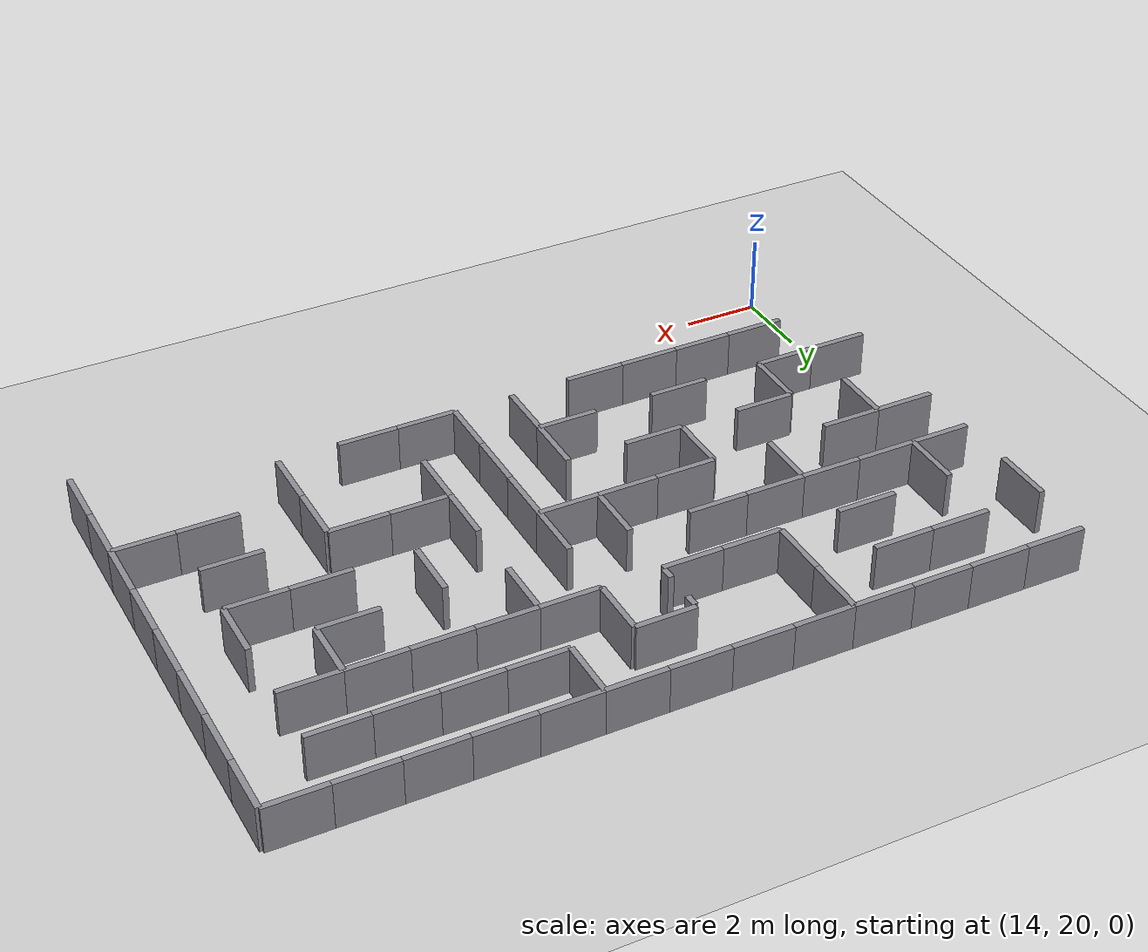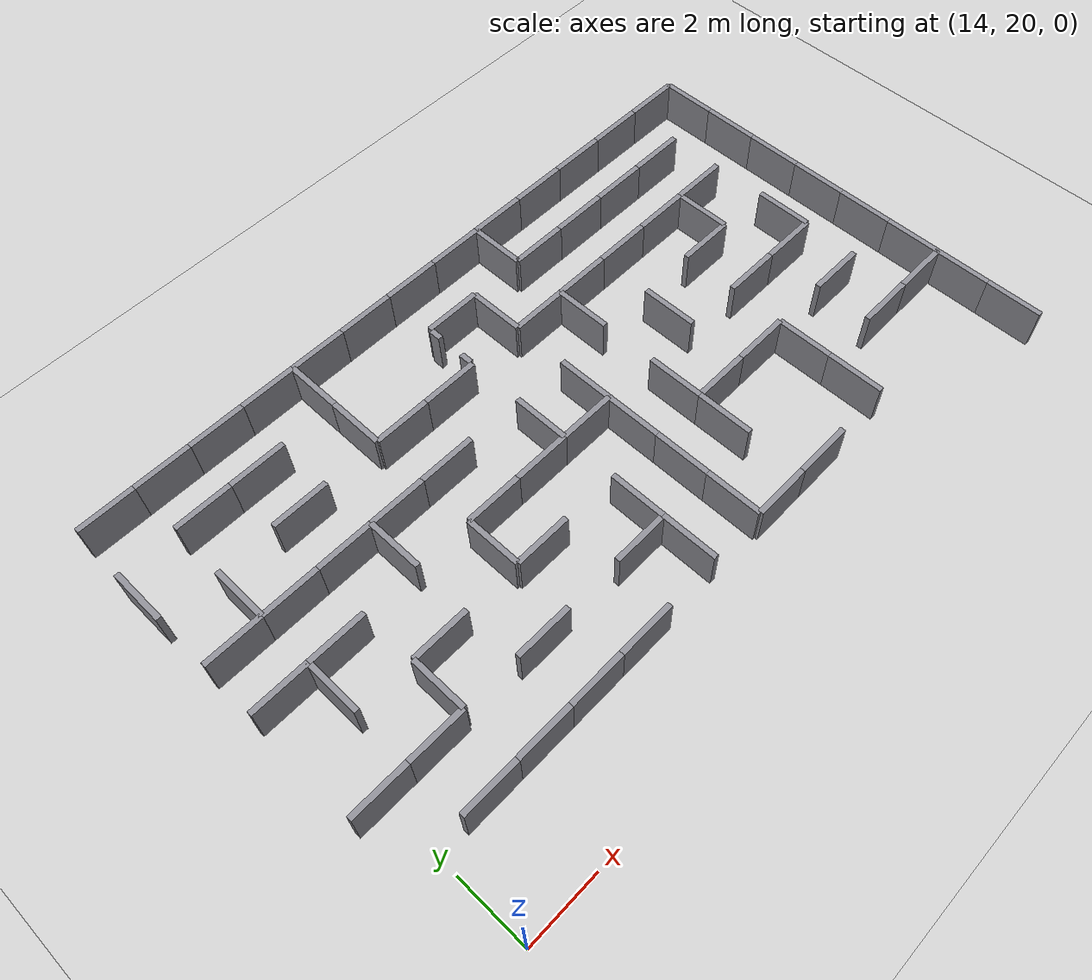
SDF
<sdf version="1.10">
 <world name="sar_maze_generated">
  <model name="ground_plane">
   <static>true</static>
   <link name="link">
    <collision name="collision">
     <geometry><plane><normal>0 0 1</normal><size>51.1 51.1</size></plane></geometry>
    </collision>
    <visual name="visual">
     <geometry><plane><normal>0 0 1</normal><size>51.1 51.1</size></plane></geometry>
     <material><ambient>0.8 0.8 0.8 1</ambient><diffuse>0.8 0.8 0.8 1</diffuse></material>
    </visual>
    <pose>16.27 16.27 0 0 0 0</pose>
    <inertial>
     <mass>1</mass>
     <inertia><ixx>1</ixx><ixy>0</ixy><ixz>0</ixz><iyy>1</iyy><iyz>0</iyz><izz>1</izz></inertia>
    </inertial>
   </link>
  </model>
  <model name="maze_structure">
   <static>true</static>
   <link name="wall_h_316">
    <static>true</static>
    <pose>15.5000 22.4750 0.6000 0 0 0</pose>
    <collision name="wall_h_316_collision">
     <geometry><box><size>1.5500 0.1500 1.2000</size></box></geometry>
    </collision>
    <visual name="wall_h_316_visual">
     <geometry><box><size>1.5500 0.1500 1.2000</size></box></geometry>
     <material><ambient>0.55 0.55 0.58 1</ambient><diffuse>0.55 0.55 0.58 1</diffuse></material>
    </visual>
   </link>
   <link name="wall_h_317">
    <static>true</static>
    <pose>17.0500 22.4750 0.6000 0 0 0</pose>
    <collision name="wall_h_317_collision">
     <geometry><box><size>1.5500 0.1500 1.2000</size></box></geometry>
    </collision>
    <visual name="wall_h_317_visual">
     <geometry><box><size>1.5500 0.1500 1.2000</size></box></geometry>
     <material><ambient>0.55 0.55 0.58 1</ambient><diffuse>0.55 0.55 0.58 1</diffuse></material>
    </visual>
   </link>
   <link name="wall_h_319">
    <static>true</static>
    <pose>18.6000 22.4750 0.6000 0 0 0</pose>
    <collision name="wall_h_319_collision">
     <geometry><box><size>1.5500 0.1500 1.2000</size></box></geometry>
    </collision>
    <visual name="wall_h_319_visual">
     <geometry><box><size>1.5500 0.1500 1.2000</size></box></geometry>
     <material><ambient>0.55 0.55 0.58 1</ambient><diffuse>0.55 0.55 0.58 1</diffuse></material>
    </visual>
   </link>
   <link name="wall_h_320">
    <static>true</static>
    <pose>20.1500 22.4750 0.6000 0 0 0</pose>
    <collision name="wall_h_320_collision">
     <geometry><box><size>1.5500 0.1500 1.2000</size></box></geometry>
    </collision>
    <visual name="wall_h_320_visual">
     <geometry><box><size>1.5500 0.1500 1.2000</size></box></geometry>
     <material><ambient>0.55 0.55 0.58 1</ambient><diffuse>0.55 0.55 0.58 1</diffuse></material>
    </visual>
   </link>
   <link name="wall_h_321">
    <static>true</static>
    <pose>24.8000 22.4750 0.6000 0 0 0</pose>
    <collision name="wall_h_321_collision">
     <geometry><box><size>1.5500 0.1500 1.2000</size></box></geometry>
    </collision>
    <visual name="wall_h_321_visual">
     <geometry><box><size>1.5500 0.1500 1.2000</size></box></geometry>
     <material><ambient>0.55 0.55 0.58 1</ambient><diffuse>0.55 0.55 0.58 1</diffuse></material>
    </visual>
   </link>
   <link name="wall_h_323">
    <static>true</static>
    <pose>26.3500 22.4750 0.6000 0 0 0</pose>
    <collision name="wall_h_323_collision">
     <geometry><box><size>1.5500 0.1500 1.2000</size></box></geometry>
    </collision>
    <visual name="wall_h_323_visual">
     <geometry><box><size>1.5500 0.1500 1.2000</size></box></geometry>
     <material><ambient>0.55 0.55 0.58 1</ambient><diffuse>0.55 0.55 0.58 1</diffuse></material>
    </visual>
   </link>
   <link name="wall_boundary_v_326">
    <static>true</static>
    <pose>33.3250 21.7000 0.6000 0 0 0</pose>
    <collision name="wall_boundary_v_326_collision">
     <geometry><box><size>0.1500 1.5500 1.2000</size></box></geometry>
    </collision>
    <visual name="wall_boundary_v_326_visual">
     <geometry><box><size>0.1500 1.5500 1.2000</size></box></geometry>
     <material><ambient>0.55 0.55 0.58 1</ambient><diffuse>0.55 0.55 0.58 1</diffuse></material>
    </visual>
   </link>
   <link name="wall_h_333">
    <static>true</static>
    <pose>13.9500 24.0250 0.6000 0 0 0</pose>
    <collision name="wall_h_333_collision">
     <geometry><box><size>1.5500 0.1500 1.2000</size></box></geometry>
    </collision>
    <visual name="wall_h_333_visual">
     <geometry><box><size>1.5500 0.1500 1.2000</size></box></geometry>
     <material><ambient>0.55 0.55 0.58 1</ambient><diffuse>0.55 0.55 0.58 1</diffuse></material>
    </visual>
   </link>
   <link name="wall_h_334">
    <static>true</static>
    <pose>15.5000 24.0250 0.6000 0 0 0</pose>
    <collision name="wall_h_334_collision">
     <geometry><box><size>1.5500 0.1500 1.2000</size></box></geometry>
    </collision>
    <visual name="wall_h_334_visual">
     <geometry><box><size>1.5500 0.1500 1.2000</size></box></geometry>
     <material><ambient>0.55 0.55 0.58 1</ambient><diffuse>0.55 0.55 0.58 1</diffuse></material>
    </visual>
   </link>
   <link name="wall_h_335">
    <static>true</static>
    <pose>18.6000 24.0250 0.6000 0 0 0</pose>
    <collision name="wall_h_335_collision">
     <geometry><box><size>1.5500 0.1500 1.2000</size></box></geometry>
    </collision>
    <visual name="wall_h_335_visual">
     <geometry><box><size>1.5500 0.1500 1.2000</size></box></geometry>
     <material><ambient>0.55 0.55 0.58 1</ambient><diffuse>0.55 0.55 0.58 1</diffuse></material>
    </visual>
   </link>
   <link name="wall_h_336">
    <static>true</static>
    <pose>21.7000 24.0250 0.6000 0 0 0</pose>
    <collision name="wall_h_336_collision">
     <geometry><box><size>1.5500 0.1500 1.2000</size></box></geometry>
    </collision>
    <visual name="wall_h_336_visual">
     <geometry><box><size>1.5500 0.1500 1.2000</size></box></geometry>
     <material><ambient>0.55 0.55 0.58 1</ambient><diffuse>0.55 0.55 0.58 1</diffuse></material>
    </visual>
   </link>
   <link name="wall_v_337">
    <static>true</static>
    <pose>22.4750 23.2500 0.6000 0 0 0</pose>
    <collision name="wall_v_337_collision">
     <geometry><box><size>0.1500 1.5500 1.2000</size></box></geometry>
    </collision>
    <visual name="wall_v_337_visual">
     <geometry><box><size>0.1500 1.5500 1.2000</size></box></geometry>
     <material><ambient>0.55 0.55 0.58 1</ambient><diffuse>0.55 0.55 0.58 1</diffuse></material>
    </visual>
   </link>
   <link name="wall_v_338">
    <static>true</static>
    <pose>24.0250 23.2500 0.6000 0 0 0</pose>
    <collision name="wall_v_338_collision">
     <geometry><box><size>0.1500 1.5500 1.2000</size></box></geometry>
    </collision>
    <visual name="wall_v_338_visual">
     <geometry><box><size>0.1500 1.5500 1.2000</size></box></geometry>
     <material><ambient>0.55 0.55 0.58 1</ambient><diffuse>0.55 0.55 0.58 1</diffuse></material>
    </visual>
   </link>
   <link name="wall_v_339">
    <static>true</static>
    <pose>28.6750 23.2500 0.6000 0 0 0</pose>
    <collision name="wall_v_339_collision">
     <geometry><box><size>0.1500 1.5500 1.2000</size></box></geometry>
    </collision>
    <visual name="wall_v_339_visual">
     <geometry><box><size>0.1500 1.5500 1.2000</size></box></geometry>
     <material><ambient>0.55 0.55 0.58 1</ambient><diffuse>0.55 0.55 0.58 1</diffuse></material>
    </visual>
   </link>
   <link name="wall_h_340">
    <static>true</static>
    <pose>31.0000 24.0250 0.6000 0 0 0</pose>
    <collision name="wall_h_340_collision">
     <geometry><box><size>1.5500 0.1500 1.2000</size></box></geometry>
    </collision>
    <visual name="wall_h_340_visual">
     <geometry><box><size>1.5500 0.1500 1.2000</size></box></geometry>
     <material><ambient>0.55 0.55 0.58 1</ambient><diffuse>0.55 0.55 0.58 1</diffuse></material>
    </visual>
   </link>
   <link name="wall_h_341">
    <static>true</static>
    <pose>32.5500 24.0250 0.6000 0 0 0</pose>
    <collision name="wall_h_341_collision">
     <geometry><box><size>1.5500 0.1500 1.2000</size></box></geometry>
    </collision>
    <visual name="wall_h_341_visual">
     <geometry><box><size>1.5500 0.1500 1.2000</size></box></geometry>
     <material><ambient>0.55 0.55 0.58 1</ambient><diffuse>0.55 0.55 0.58 1</diffuse></material>
    </visual>
   </link>
   <link name="wall_boundary_v_342">
    <static>true</static>
    <pose>33.3250 23.2500 0.6000 0 0 0</pose>
    <collision name="wall_boundary_v_342_collision">
     <geometry><box><size>0.1500 1.5500 1.2000</size></box></geometry>
    </collision>
    <visual name="wall_boundary_v_342_visual">
     <geometry><box><size>0.1500 1.5500 1.2000</size></box></geometry>
     <material><ambient>0.55 0.55 0.58 1</ambient><diffuse>0.55 0.55 0.58 1</diffuse></material>
    </visual>
   </link>
   <link name="wall_v_352">
    <static>true</static>
    <pose>16.2750 24.8000 0.6000 0 0 0</pose>
    <collision name="wall_v_352_collision">
     <geometry><box><size>0.1500 1.5500 1.2000</size></box></geometry>
    </collision>
    <visual name="wall_v_352_visual">
     <geometry><box><size>0.1500 1.5500 1.2000</size></box></geometry>
     <material><ambient>0.55 0.55 0.58 1</ambient><diffuse>0.55 0.55 0.58 1</diffuse></material>
    </visual>
   </link>
   <link name="wall_h_353">
    <static>true</static>
    <pose>17.0500 25.5750 0.6000 0 0 0</pose>
    <collision name="wall_h_353_collision">
     <geometry><box><size>1.5500 0.1500 1.2000</size></box></geometry>
    </collision>
    <visual name="wall_h_353_visual">
     <geometry><box><size>1.5500 0.1500 1.2000</size></box></geometry>
     <material><ambient>0.55 0.55 0.58 1</ambient><diffuse>0.55 0.55 0.58 1</diffuse></material>
    </visual>
   </link>
   <link name="wall_h_354">
    <static>true</static>
    <pose>20.1500 25.5750 0.6000 0 0 0</pose>
    <collision name="wall_h_354_collision">
     <geometry><box><size>1.5500 0.1500 1.2000</size></box></geometry>
    </collision>
    <visual name="wall_h_354_visual">
     <geometry><box><size>1.5500 0.1500 1.2000</size></box></geometry>
     <material><ambient>0.55 0.55 0.58 1</ambient><diffuse>0.55 0.55 0.58 1</diffuse></material>
    </visual>
   </link>
   <link name="wall_v_355">
    <static>true</static>
    <pose>22.4750 24.8000 0.6000 0 0 0</pose>
    <collision name="wall_v_355_collision">
     <geometry><box><size>0.1500 1.5500 1.2000</size></box></geometry>
    </collision>
    <visual name="wall_v_355_visual">
     <geometry><box><size>0.1500 1.5500 1.2000</size></box></geometry>
     <material><ambient>0.55 0.55 0.58 1</ambient><diffuse>0.55 0.55 0.58 1</diffuse></material>
    </visual>
   </link>
   <link name="wall_v_356">
    <static>true</static>
    <pose>24.0250 24.8000 0.6000 0 0 0</pose>
    <collision name="wall_v_356_collision">
     <geometry><box><size>0.1500 1.5500 1.2000</size></box></geometry>
    </collision>
    <visual name="wall_v_356_visual">
     <geometry><box><size>0.1500 1.5500 1.2000</size></box></geometry>
     <material><ambient>0.55 0.55 0.58 1</ambient><diffuse>0.55 0.55 0.58 1</diffuse></material>
    </visual>
   </link>
   <link name="wall_v_357">
    <static>true</static>
    <pose>25.5750 24.8000 0.6000 0 0 0</pose>
    <collision name="wall_v_357_collision">
     <geometry><box><size>0.1500 1.5500 1.2000</size></box></geometry>
    </collision>
    <visual name="wall_v_357_visual">
     <geometry><box><size>0.1500 1.5500 1.2000</size></box></geometry>
     <material><ambient>0.55 0.55 0.58 1</ambient><diffuse>0.55 0.55 0.58 1</diffuse></material>
    </visual>
   </link>
   <link name="wall_h_358">
    <static>true</static>
    <pose>26.3500 25.5750 0.6000 0 0 0</pose>
    <collision name="wall_h_358_collision">
     <geometry><box><size>1.5500 0.1500 1.2000</size></box></geometry>
    </collision>
    <visual name="wall_h_358_visual">
     <geometry><box><size>1.5500 0.1500 1.2000</size></box></geometry>
     <material><ambient>0.55 0.55 0.58 1</ambient><diffuse>0.55 0.55 0.58 1</diffuse></material>
    </visual>
   </link>
   <link name="wall_h_359">
    <static>true</static>
    <pose>27.9000 25.5750 0.6000 0 0 0</pose>
    <collision name="wall_h_359_collision">
     <geometry><box><size>1.5500 0.1500 1.2000</size></box></geometry>
    </collision>
    <visual name="wall_h_359_visual">
     <geometry><box><size>1.5500 0.1500 1.2000</size></box></geometry>
     <material><ambient>0.55 0.55 0.58 1</ambient><diffuse>0.55 0.55 0.58 1</diffuse></material>
    </visual>
   </link>
   <link name="wall_v_360">
    <static>true</static>
    <pose>28.6750 24.8000 0.6000 0 0 0</pose>
    <collision name="wall_v_360_collision">
     <geometry><box><size>0.1500 1.5500 1.2000</size></box></geometry>
    </collision>
    <visual name="wall_v_360_visual">
     <geometry><box><size>0.1500 1.5500 1.2000</size></box></geometry>
     <material><ambient>0.55 0.55 0.58 1</ambient><diffuse>0.55 0.55 0.58 1</diffuse></material>
    </visual>
   </link>
   <link name="wall_h_361">
    <static>true</static>
    <pose>31.0000 25.5750 0.6000 0 0 0</pose>
    <collision name="wall_h_361_collision">
     <geometry><box><size>1.5500 0.1500 1.2000</size></box></geometry>
    </collision>
    <visual name="wall_h_361_visual">
     <geometry><box><size>1.5500 0.1500 1.2000</size></box></geometry>
     <material><ambient>0.55 0.55 0.58 1</ambient><diffuse>0.55 0.55 0.58 1</diffuse></material>
    </visual>
   </link>
   <link name="wall_boundary_v_362">
    <static>true</static>
    <pose>33.3250 24.8000 0.6000 0 0 0</pose>
    <collision name="wall_boundary_v_362_collision">
     <geometry><box><size>0.1500 1.5500 1.2000</size></box></geometry>
    </collision>
    <visual name="wall_boundary_v_362_visual">
     <geometry><box><size>0.1500 1.5500 1.2000</size></box></geometry>
     <material><ambient>0.55 0.55 0.58 1</ambient><diffuse>0.55 0.55 0.58 1</diffuse></material>
    </visual>
   </link>
   <link name="wall_h_368">
    <static>true</static>
    <pose>13.9500 27.1250 0.6000 0 0 0</pose>
    <collision name="wall_h_368_collision">
     <geometry><box><size>1.5500 0.1500 1.2000</size></box></geometry>
    </collision>
    <visual name="wall_h_368_visual">
     <geometry><box><size>1.5500 0.1500 1.2000</size></box></geometry>
     <material><ambient>0.55 0.55 0.58 1</ambient><diffuse>0.55 0.55 0.58 1</diffuse></material>
    </visual>
   </link>
   <link name="wall_v_369">
    <static>true</static>
    <pose>14.7250 26.3500 0.6000 0 0 0</pose>
    <collision name="wall_v_369_collision">
     <geometry><box><size>0.1500 1.5500 1.2000</size></box></geometry>
    </collision>
    <visual name="wall_v_369_visual">
     <geometry><box><size>0.1500 1.5500 1.2000</size></box></geometry>
     <material><ambient>0.55 0.55 0.58 1</ambient><diffuse>0.55 0.55 0.58 1</diffuse></material>
    </visual>
   </link>
   <link name="wall_h_370">
    <static>true</static>
    <pose>15.5000 27.1250 0.6000 0 0 0</pose>
    <collision name="wall_h_370_collision">
     <geometry><box><size>1.5500 0.1500 1.2000</size></box></geometry>
    </collision>
    <visual name="wall_h_370_visual">
     <geometry><box><size>1.5500 0.1500 1.2000</size></box></geometry>
     <material><ambient>0.55 0.55 0.58 1</ambient><diffuse>0.55 0.55 0.58 1</diffuse></material>
    </visual>
   </link>
   <link name="wall_v_371">
    <static>true</static>
    <pose>19.3750 26.3500 0.6000 0 0 0</pose>
    <collision name="wall_v_371_collision">
     <geometry><box><size>0.1500 1.5500 1.2000</size></box></geometry>
    </collision>
    <visual name="wall_v_371_visual">
     <geometry><box><size>0.1500 1.5500 1.2000</size></box></geometry>
     <material><ambient>0.55 0.55 0.58 1</ambient><diffuse>0.55 0.55 0.58 1</diffuse></material>
    </visual>
   </link>
   <link name="wall_h_372">
    <static>true</static>
    <pose>20.1500 27.1250 0.6000 0 0 0</pose>
    <collision name="wall_h_372_collision">
     <geometry><box><size>1.5500 0.1500 1.2000</size></box></geometry>
    </collision>
    <visual name="wall_h_372_visual">
     <geometry><box><size>1.5500 0.1500 1.2000</size></box></geometry>
     <material><ambient>0.55 0.55 0.58 1</ambient><diffuse>0.55 0.55 0.58 1</diffuse></material>
    </visual>
   </link>
   <link name="wall_h_373">
    <static>true</static>
    <pose>21.7000 27.1250 0.6000 0 0 0</pose>
    <collision name="wall_h_373_collision">
     <geometry><box><size>1.5500 0.1500 1.2000</size></box></geometry>
    </collision>
    <visual name="wall_h_373_visual">
     <geometry><box><size>1.5500 0.1500 1.2000</size></box></geometry>
     <material><ambient>0.55 0.55 0.58 1</ambient><diffuse>0.55 0.55 0.58 1</diffuse></material>
    </visual>
   </link>
   <link name="wall_h_374">
    <static>true</static>
    <pose>23.2500 27.1250 0.6000 0 0 0</pose>
    <collision name="wall_h_374_collision">
     <geometry><box><size>1.5500 0.1500 1.2000</size></box></geometry>
    </collision>
    <visual name="wall_h_374_visual">
     <geometry><box><size>1.5500 0.1500 1.2000</size></box></geometry>
     <material><ambient>0.55 0.55 0.58 1</ambient><diffuse>0.55 0.55 0.58 1</diffuse></material>
    </visual>
   </link>
   <link name="wall_v_375">
    <static>true</static>
    <pose>24.0250 26.3500 0.6000 0 0 0</pose>
    <collision name="wall_v_375_collision">
     <geometry><box><size>0.1500 1.5500 1.2000</size></box></geometry>
    </collision>
    <visual name="wall_v_375_visual">
     <geometry><box><size>0.1500 1.5500 1.2000</size></box></geometry>
     <material><ambient>0.55 0.55 0.58 1</ambient><diffuse>0.55 0.55 0.58 1</diffuse></material>
    </visual>
   </link>
   <link name="wall_v_376">
    <static>true</static>
    <pose>25.5750 26.3500 0.6000 0 0 0</pose>
    <collision name="wall_v_376_collision">
     <geometry><box><size>0.1500 1.5500 1.2000</size></box></geometry>
    </collision>
    <visual name="wall_v_376_visual">
     <geometry><box><size>0.1500 1.5500 1.2000</size></box></geometry>
     <material><ambient>0.55 0.55 0.58 1</ambient><diffuse>0.55 0.55 0.58 1</diffuse></material>
    </visual>
   </link>
   <link name="wall_h_377">
    <static>true</static>
    <pose>29.4500 27.1250 0.6000 0 0 0</pose>
    <collision name="wall_h_377_collision">
     <geometry><box><size>1.5500 0.1500 1.2000</size></box></geometry>
    </collision>
    <visual name="wall_h_377_visual">
     <geometry><box><size>1.5500 0.1500 1.2000</size></box></geometry>
     <material><ambient>0.55 0.55 0.58 1</ambient><diffuse>0.55 0.55 0.58 1</diffuse></material>
    </visual>
   </link>
   <link name="wall_h_378">
    <static>true</static>
    <pose>31.0000 27.1250 0.6000 0 0 0</pose>
    <collision name="wall_h_378_collision">
     <geometry><box><size>1.5500 0.1500 1.2000</size></box></geometry>
    </collision>
    <visual name="wall_h_378_visual">
     <geometry><box><size>1.5500 0.1500 1.2000</size></box></geometry>
     <material><ambient>0.55 0.55 0.58 1</ambient><diffuse>0.55 0.55 0.58 1</diffuse></material>
    </visual>
   </link>
   <link name="wall_boundary_v_379">
    <static>true</static>
    <pose>33.3250 26.3500 0.6000 0 0 0</pose>
    <collision name="wall_boundary_v_379_collision">
     <geometry><box><size>0.1500 1.5500 1.2000</size></box></geometry>
    </collision>
    <visual name="wall_boundary_v_379_visual">
     <geometry><box><size>0.1500 1.5500 1.2000</size></box></geometry>
     <material><ambient>0.55 0.55 0.58 1</ambient><diffuse>0.55 0.55 0.58 1</diffuse></material>
    </visual>
   </link>
   <link name="wall_h_389">
    <static>true</static>
    <pose>13.9500 28.6750 0.6000 0 0 0</pose>
    <collision name="wall_h_389_collision">
     <geometry><box><size>1.5500 0.1500 1.2000</size></box></geometry>
    </collision>
    <visual name="wall_h_389_visual">
     <geometry><box><size>1.5500 0.1500 1.2000</size></box></geometry>
     <material><ambient>0.55 0.55 0.58 1</ambient><diffuse>0.55 0.55 0.58 1</diffuse></material>
    </visual>
   </link>
   <link name="wall_h_390">
    <static>true</static>
    <pose>15.5000 28.6750 0.6000 0 0 0</pose>
    <collision name="wall_h_390_collision">
     <geometry><box><size>1.5500 0.1500 1.2000</size></box></geometry>
    </collision>
    <visual name="wall_h_390_visual">
     <geometry><box><size>1.5500 0.1500 1.2000</size></box></geometry>
     <material><ambient>0.55 0.55 0.58 1</ambient><diffuse>0.55 0.55 0.58 1</diffuse></material>
    </visual>
   </link>
   <link name="wall_h_391">
    <static>true</static>
    <pose>17.0500 28.6750 0.6000 0 0 0</pose>
    <collision name="wall_h_391_collision">
     <geometry><box><size>1.5500 0.1500 1.2000</size></box></geometry>
    </collision>
    <visual name="wall_h_391_visual">
     <geometry><box><size>1.5500 0.1500 1.2000</size></box></geometry>
     <material><ambient>0.55 0.55 0.58 1</ambient><diffuse>0.55 0.55 0.58 1</diffuse></material>
    </visual>
   </link>
   <link name="wall_v_392">
    <static>true</static>
    <pose>17.8250 27.9000 0.6000 0 0 0</pose>
    <collision name="wall_v_392_collision">
     <geometry><box><size>0.1500 1.5500 1.2000</size></box></geometry>
    </collision>
    <visual name="wall_v_392_visual">
     <geometry><box><size>0.1500 1.5500 1.2000</size></box></geometry>
     <material><ambient>0.55 0.55 0.58 1</ambient><diffuse>0.55 0.55 0.58 1</diffuse></material>
    </visual>
   </link>
   <link name="wall_h_393">
    <static>true</static>
    <pose>18.6000 28.6750 0.6000 0 0 0</pose>
    <collision name="wall_h_393_collision">
     <geometry><box><size>1.5500 0.1500 1.2000</size></box></geometry>
    </collision>
    <visual name="wall_h_393_visual">
     <geometry><box><size>1.5500 0.1500 1.2000</size></box></geometry>
     <material><ambient>0.55 0.55 0.58 1</ambient><diffuse>0.55 0.55 0.58 1</diffuse></material>
    </visual>
   </link>
   <link name="wall_h_394">
    <static>true</static>
    <pose>20.1500 28.6750 0.6000 0 0 0</pose>
    <collision name="wall_h_394_collision">
     <geometry><box><size>1.5500 0.1500 1.2000</size></box></geometry>
    </collision>
    <visual name="wall_h_394_visual">
     <geometry><box><size>1.5500 0.1500 1.2000</size></box></geometry>
     <material><ambient>0.55 0.55 0.58 1</ambient><diffuse>0.55 0.55 0.58 1</diffuse></material>
    </visual>
   </link>
   <link name="wall_v_395">
    <static>true</static>
    <pose>22.4750 27.9000 0.6000 0 0 0</pose>
    <collision name="wall_v_395_collision">
     <geometry><box><size>0.1500 1.5500 1.2000</size></box></geometry>
    </collision>
    <visual name="wall_v_395_visual">
     <geometry><box><size>0.1500 1.5500 1.2000</size></box></geometry>
     <material><ambient>0.55 0.55 0.58 1</ambient><diffuse>0.55 0.55 0.58 1</diffuse></material>
    </visual>
   </link>
   <link name="wall_v_396">
    <static>true</static>
    <pose>24.0250 27.9000 0.6000 0 0 0</pose>
    <collision name="wall_v_396_collision">
     <geometry><box><size>0.1500 1.5500 1.2000</size></box></geometry>
    </collision>
    <visual name="wall_v_396_visual">
     <geometry><box><size>0.1500 1.5500 1.2000</size></box></geometry>
     <material><ambient>0.55 0.55 0.58 1</ambient><diffuse>0.55 0.55 0.58 1</diffuse></material>
    </visual>
   </link>
   <link name="wall_v_397">
    <static>true</static>
    <pose>27.1250 27.9000 0.6000 0 0 0</pose>
    <collision name="wall_v_397_collision">
     <geometry><box><size>0.1500 1.5500 1.2000</size></box></geometry>
    </collision>
    <visual name="wall_v_397_visual">
     <geometry><box><size>0.1500 1.5500 1.2000</size></box></geometry>
     <material><ambient>0.55 0.55 0.58 1</ambient><diffuse>0.55 0.55 0.58 1</diffuse></material>
    </visual>
   </link>
   <link name="wall_h_398">
    <static>true</static>
    <pose>29.4500 28.6750 0.6000 0 0 0</pose>
    <collision name="wall_h_398_collision">
     <geometry><box><size>1.5500 0.1500 1.2000</size></box></geometry>
    </collision>
    <visual name="wall_h_398_visual">
     <geometry><box><size>1.5500 0.1500 1.2000</size></box></geometry>
     <material><ambient>0.55 0.55 0.58 1</ambient><diffuse>0.55 0.55 0.58 1</diffuse></material>
    </visual>
   </link>
   <link name="wall_v_399">
    <static>true</static>
    <pose>31.7750 27.9000 0.6000 0 0 0</pose>
    <collision name="wall_v_399_collision">
     <geometry><box><size>0.1500 1.5500 1.2000</size></box></geometry>
    </collision>
    <visual name="wall_v_399_visual">
     <geometry><box><size>0.1500 1.5500 1.2000</size></box></geometry>
     <material><ambient>0.55 0.55 0.58 1</ambient><diffuse>0.55 0.55 0.58 1</diffuse></material>
    </visual>
   </link>
   <link name="wall_boundary_v_400">
    <static>true</static>
    <pose>33.3250 27.9000 0.6000 0 0 0</pose>
    <collision name="wall_boundary_v_400_collision">
     <geometry><box><size>0.1500 1.5500 1.2000</size></box></geometry>
    </collision>
    <visual name="wall_boundary_v_400_visual">
     <geometry><box><size>0.1500 1.5500 1.2000</size></box></geometry>
     <material><ambient>0.55 0.55 0.58 1</ambient><diffuse>0.55 0.55 0.58 1</diffuse></material>
    </visual>
   </link>
   <link name="wall_v_406">
    <static>true</static>
    <pose>14.7250 29.4500 0.6000 0 0 0</pose>
    <collision name="wall_v_406_collision">
     <geometry><box><size>0.1500 1.5500 1.2000</size></box></geometry>
    </collision>
    <visual name="wall_v_406_visual">
     <geometry><box><size>0.1500 1.5500 1.2000</size></box></geometry>
     <material><ambient>0.55 0.55 0.58 1</ambient><diffuse>0.55 0.55 0.58 1</diffuse></material>
    </visual>
   </link>
   <link name="wall_h_407">
    <static>true</static>
    <pose>17.0500 30.2250 0.6000 0 0 0</pose>
    <collision name="wall_h_407_collision">
     <geometry><box><size>1.5500 0.1500 1.2000</size></box></geometry>
    </collision>
    <visual name="wall_h_407_visual">
     <geometry><box><size>1.5500 0.1500 1.2000</size></box></geometry>
     <material><ambient>0.55 0.55 0.58 1</ambient><diffuse>0.55 0.55 0.58 1</diffuse></material>
    </visual>
   </link>
   <link name="wall_h_408">
    <static>true</static>
    <pose>20.1500 30.2250 0.6000 0 0 0</pose>
    <collision name="wall_h_408_collision">
     <geometry><box><size>1.5500 0.1500 1.2000</size></box></geometry>
    </collision>
    <visual name="wall_h_408_visual">
     <geometry><box><size>1.5500 0.1500 1.2000</size></box></geometry>
     <material><ambient>0.55 0.55 0.58 1</ambient><diffuse>0.55 0.55 0.58 1</diffuse></material>
    </visual>
   </link>
   <link name="wall_h_409">
    <static>true</static>
    <pose>21.7000 30.2250 0.6000 0 0 0</pose>
    <collision name="wall_h_409_collision">
     <geometry><box><size>1.5500 0.1500 1.2000</size></box></geometry>
    </collision>
    <visual name="wall_h_409_visual">
     <geometry><box><size>1.5500 0.1500 1.2000</size></box></geometry>
     <material><ambient>0.55 0.55 0.58 1</ambient><diffuse>0.55 0.55 0.58 1</diffuse></material>
    </visual>
   </link>
   <link name="wall_h_410">
    <static>true</static>
    <pose>24.8000 30.2250 0.6000 0 0 0</pose>
    <collision name="wall_h_410_collision">
     <geometry><box><size>1.5500 0.1500 1.2000</size></box></geometry>
    </collision>
    <visual name="wall_h_410_visual">
     <geometry><box><size>1.5500 0.1500 1.2000</size></box></geometry>
     <material><ambient>0.55 0.55 0.58 1</ambient><diffuse>0.55 0.55 0.58 1</diffuse></material>
    </visual>
   </link>
   <link name="wall_v_411">
    <static>true</static>
    <pose>25.5750 29.4500 0.6000 0 0 0</pose>
    <collision name="wall_v_411_collision">
     <geometry><box><size>0.1500 1.5500 1.2000</size></box></geometry>
    </collision>
    <visual name="wall_v_411_visual">
     <geometry><box><size>0.1500 1.5500 1.2000</size></box></geometry>
     <material><ambient>0.55 0.55 0.58 1</ambient><diffuse>0.55 0.55 0.58 1</diffuse></material>
    </visual>
   </link>
   <link name="wall_h_412">
    <static>true</static>
    <pose>26.3500 30.2250 0.6000 0 0 0</pose>
    <collision name="wall_h_412_collision">
     <geometry><box><size>1.5500 0.1500 1.2000</size></box></geometry>
    </collision>
    <visual name="wall_h_412_visual">
     <geometry><box><size>1.5500 0.1500 1.2000</size></box></geometry>
     <material><ambient>0.55 0.55 0.58 1</ambient><diffuse>0.55 0.55 0.58 1</diffuse></material>
    </visual>
   </link>
   <link name="wall_h_413">
    <static>true</static>
    <pose>27.9000 30.2250 0.6000 0 0 0</pose>
    <collision name="wall_h_413_collision">
     <geometry><box><size>1.5500 0.1500 1.2000</size></box></geometry>
    </collision>
    <visual name="wall_h_413_visual">
     <geometry><box><size>1.5500 0.1500 1.2000</size></box></geometry>
     <material><ambient>0.55 0.55 0.58 1</ambient><diffuse>0.55 0.55 0.58 1</diffuse></material>
    </visual>
   </link>
   <link name="wall_h_414">
    <static>true</static>
    <pose>29.4500 30.2250 0.6000 0 0 0</pose>
    <collision name="wall_h_414_collision">
     <geometry><box><size>1.5500 0.1500 1.2000</size></box></geometry>
    </collision>
    <visual name="wall_h_414_visual">
     <geometry><box><size>1.5500 0.1500 1.2000</size></box></geometry>
     <material><ambient>0.55 0.55 0.58 1</ambient><diffuse>0.55 0.55 0.58 1</diffuse></material>
    </visual>
   </link>
   <link name="wall_v_415">
    <static>true</static>
    <pose>30.2250 29.4500 0.6000 0 0 0</pose>
    <collision name="wall_v_415_collision">
     <geometry><box><size>0.1500 1.5500 1.2000</size></box></geometry>
    </collision>
    <visual name="wall_v_415_visual">
     <geometry><box><size>0.1500 1.5500 1.2000</size></box></geometry>
     <material><ambient>0.55 0.55 0.58 1</ambient><diffuse>0.55 0.55 0.58 1</diffuse></material>
    </visual>
   </link>
   <link name="wall_h_416">
    <static>true</static>
    <pose>31.0000 30.2250 0.6000 0 0 0</pose>
    <collision name="wall_h_416_collision">
     <geometry><box><size>1.5500 0.1500 1.2000</size></box></geometry>
    </collision>
    <visual name="wall_h_416_visual">
     <geometry><box><size>1.5500 0.1500 1.2000</size></box></geometry>
     <material><ambient>0.55 0.55 0.58 1</ambient><diffuse>0.55 0.55 0.58 1</diffuse></material>
    </visual>
   </link>
   <link name="wall_boundary_v_417">
    <static>true</static>
    <pose>33.3250 29.4500 0.6000 0 0 0</pose>
    <collision name="wall_boundary_v_417_collision">
     <geometry><box><size>0.1500 1.5500 1.2000</size></box></geometry>
    </collision>
    <visual name="wall_boundary_v_417_visual">
     <geometry><box><size>0.1500 1.5500 1.2000</size></box></geometry>
     <material><ambient>0.55 0.55 0.58 1</ambient><diffuse>0.55 0.55 0.58 1</diffuse></material>
    </visual>
   </link>
   <link name="wall_v_427">
    <static>true</static>
    <pose>13.1750 31.0000 0.6000 0 0 0</pose>
    <collision name="wall_v_427_collision">
     <geometry><box><size>0.1500 1.5500 1.2000</size></box></geometry>
    </collision>
    <visual name="wall_v_427_visual">
     <geometry><box><size>0.1500 1.5500 1.2000</size></box></geometry>
     <material><ambient>0.55 0.55 0.58 1</ambient><diffuse>0.55 0.55 0.58 1</diffuse></material>
    </visual>
   </link>
   <link name="wall_h_428">
    <static>true</static>
    <pose>15.5000 31.7750 0.6000 0 0 0</pose>
    <collision name="wall_h_428_collision">
     <geometry><box><size>1.5500 0.1500 1.2000</size></box></geometry>
    </collision>
    <visual name="wall_h_428_visual">
     <geometry><box><size>1.5500 0.1500 1.2000</size></box></geometry>
     <material><ambient>0.55 0.55 0.58 1</ambient><diffuse>0.55 0.55 0.58 1</diffuse></material>
    </visual>
   </link>
   <link name="wall_h_429">
    <static>true</static>
    <pose>17.0500 31.7750 0.6000 0 0 0</pose>
    <collision name="wall_h_429_collision">
     <geometry><box><size>1.5500 0.1500 1.2000</size></box></geometry>
    </collision>
    <visual name="wall_h_429_visual">
     <geometry><box><size>1.5500 0.1500 1.2000</size></box></geometry>
     <material><ambient>0.55 0.55 0.58 1</ambient><diffuse>0.55 0.55 0.58 1</diffuse></material>
    </visual>
   </link>
   <link name="wall_v_430">
    <static>true</static>
    <pose>19.3750 31.0000 0.6000 0 0 0</pose>
    <collision name="wall_v_430_collision">
     <geometry><box><size>0.1500 1.5500 1.2000</size></box></geometry>
    </collision>
    <visual name="wall_v_430_visual">
     <geometry><box><size>0.1500 1.5500 1.2000</size></box></geometry>
     <material><ambient>0.55 0.55 0.58 1</ambient><diffuse>0.55 0.55 0.58 1</diffuse></material>
    </visual>
   </link>
   <link name="pinch_stub_431">
    <static>true</static>
    <pose>22.4750 30.4625 0.6000 0 0 0</pose>
    <collision name="pinch_stub_431_collision">
     <geometry><box><size>0.1500 0.3250 1.2000</size></box></geometry>
    </collision>
    <visual name="pinch_stub_431_visual">
     <geometry><box><size>0.1500 0.3250 1.2000</size></box></geometry>
     <material><ambient>0.55 0.55 0.58 1</ambient><diffuse>0.55 0.55 0.58 1</diffuse></material>
    </visual>
   </link>
   <link name="pinch_stub_432">
    <static>true</static>
    <pose>22.4750 31.5375 0.6000 0 0 0</pose>
    <collision name="pinch_stub_432_collision">
     <geometry><box><size>0.1500 0.3250 1.2000</size></box></geometry>
    </collision>
    <visual name="pinch_stub_432_visual">
     <geometry><box><size>0.1500 0.3250 1.2000</size></box></geometry>
     <material><ambient>0.55 0.55 0.58 1</ambient><diffuse>0.55 0.55 0.58 1</diffuse></material>
    </visual>
   </link>
   <link name="wall_h_433">
    <static>true</static>
    <pose>23.2500 31.7750 0.6000 0 0 0</pose>
    <collision name="wall_h_433_collision">
     <geometry><box><size>1.5500 0.1500 1.2000</size></box></geometry>
    </collision>
    <visual name="wall_h_433_visual">
     <geometry><box><size>1.5500 0.1500 1.2000</size></box></geometry>
     <material><ambient>0.55 0.55 0.58 1</ambient><diffuse>0.55 0.55 0.58 1</diffuse></material>
    </visual>
   </link>
   <link name="wall_v_434">
    <static>true</static>
    <pose>24.0250 31.0000 0.6000 0 0 0</pose>
    <collision name="wall_v_434_collision">
     <geometry><box><size>0.1500 1.5500 1.2000</size></box></geometry>
    </collision>
    <visual name="wall_v_434_visual">
     <geometry><box><size>0.1500 1.5500 1.2000</size></box></geometry>
     <material><ambient>0.55 0.55 0.58 1</ambient><diffuse>0.55 0.55 0.58 1</diffuse></material>
    </visual>
   </link>
   <link name="wall_h_435">
    <static>true</static>
    <pose>26.3500 31.7750 0.6000 0 0 0</pose>
    <collision name="wall_h_435_collision">
     <geometry><box><size>1.5500 0.1500 1.2000</size></box></geometry>
    </collision>
    <visual name="wall_h_435_visual">
     <geometry><box><size>1.5500 0.1500 1.2000</size></box></geometry>
     <material><ambient>0.55 0.55 0.58 1</ambient><diffuse>0.55 0.55 0.58 1</diffuse></material>
    </visual>
   </link>
   <link name="wall_h_436">
    <static>true</static>
    <pose>27.9000 31.7750 0.6000 0 0 0</pose>
    <collision name="wall_h_436_collision">
     <geometry><box><size>1.5500 0.1500 1.2000</size></box></geometry>
    </collision>
    <visual name="wall_h_436_visual">
     <geometry><box><size>1.5500 0.1500 1.2000</size></box></geometry>
     <material><ambient>0.55 0.55 0.58 1</ambient><diffuse>0.55 0.55 0.58 1</diffuse></material>
    </visual>
   </link>
   <link name="wall_h_437">
    <static>true</static>
    <pose>29.4500 31.7750 0.6000 0 0 0</pose>
    <collision name="wall_h_437_collision">
     <geometry><box><size>1.5500 0.1500 1.2000</size></box></geometry>
    </collision>
    <visual name="wall_h_437_visual">
     <geometry><box><size>1.5500 0.1500 1.2000</size></box></geometry>
     <material><ambient>0.55 0.55 0.58 1</ambient><diffuse>0.55 0.55 0.58 1</diffuse></material>
    </visual>
   </link>
   <link name="wall_h_438">
    <static>true</static>
    <pose>31.0000 31.7750 0.6000 0 0 0</pose>
    <collision name="wall_h_438_collision">
     <geometry><box><size>1.5500 0.1500 1.2000</size></box></geometry>
    </collision>
    <visual name="wall_h_438_visual">
     <geometry><box><size>1.5500 0.1500 1.2000</size></box></geometry>
     <material><ambient>0.55 0.55 0.58 1</ambient><diffuse>0.55 0.55 0.58 1</diffuse></material>
    </visual>
   </link>
   <link name="wall_boundary_v_439">
    <static>true</static>
    <pose>33.3250 31.0000 0.6000 0 0 0</pose>
    <collision name="wall_boundary_v_439_collision">
     <geometry><box><size>0.1500 1.5500 1.2000</size></box></geometry>
    </collision>
    <visual name="wall_boundary_v_439_visual">
     <geometry><box><size>0.1500 1.5500 1.2000</size></box></geometry>
     <material><ambient>0.55 0.55 0.58 1</ambient><diffuse>0.55 0.55 0.58 1</diffuse></material>
    </visual>
   </link>
   <link name="wall_boundary_h_452">
    <static>true</static>
    <pose>13.9500 33.3250 0.6000 0 0 0</pose>
    <collision name="wall_boundary_h_452_collision">
     <geometry><box><size>1.5500 0.1500 1.2000</size></box></geometry>
    </collision>
    <visual name="wall_boundary_h_452_visual">
     <geometry><box><size>1.5500 0.1500 1.2000</size></box></geometry>
     <material><ambient>0.55 0.55 0.58 1</ambient><diffuse>0.55 0.55 0.58 1</diffuse></material>
    </visual>
   </link>
   <link name="wall_boundary_h_453">
    <static>true</static>
    <pose>15.5000 33.3250 0.6000 0 0 0</pose>
    <collision name="wall_boundary_h_453_collision">
     <geometry><box><size>1.5500 0.1500 1.2000</size></box></geometry>
    </collision>
    <visual name="wall_boundary_h_453_visual">
     <geometry><box><size>1.5500 0.1500 1.2000</size></box></geometry>
     <material><ambient>0.55 0.55 0.58 1</ambient><diffuse>0.55 0.55 0.58 1</diffuse></material>
    </visual>
   </link>
   <link name="wall_boundary_h_454">
    <static>true</static>
    <pose>17.0500 33.3250 0.6000 0 0 0</pose>
    <collision name="wall_boundary_h_454_collision">
     <geometry><box><size>1.5500 0.1500 1.2000</size></box></geometry>
    </collision>
    <visual name="wall_boundary_h_454_visual">
     <geometry><box><size>1.5500 0.1500 1.2000</size></box></geometry>
     <material><ambient>0.55 0.55 0.58 1</ambient><diffuse>0.55 0.55 0.58 1</diffuse></material>
    </visual>
   </link>
   <link name="wall_boundary_h_455">
    <static>true</static>
    <pose>18.6000 33.3250 0.6000 0 0 0</pose>
    <collision name="wall_boundary_h_455_collision">
     <geometry><box><size>1.5500 0.1500 1.2000</size></box></geometry>
    </collision>
    <visual name="wall_boundary_h_455_visual">
     <geometry><box><size>1.5500 0.1500 1.2000</size></box></geometry>
     <material><ambient>0.55 0.55 0.58 1</ambient><diffuse>0.55 0.55 0.58 1</diffuse></material>
    </visual>
   </link>
   <link name="wall_v_456">
    <static>true</static>
    <pose>19.3750 32.5500 0.6000 0 0 0</pose>
    <collision name="wall_v_456_collision">
     <geometry><box><size>0.1500 1.5500 1.2000</size></box></geometry>
    </collision>
    <visual name="wall_v_456_visual">
     <geometry><box><size>0.1500 1.5500 1.2000</size></box></geometry>
     <material><ambient>0.55 0.55 0.58 1</ambient><diffuse>0.55 0.55 0.58 1</diffuse></material>
    </visual>
   </link>
   <link name="wall_boundary_h_457">
    <static>true</static>
    <pose>20.1500 33.3250 0.6000 0 0 0</pose>
    <collision name="wall_boundary_h_457_collision">
     <geometry><box><size>1.5500 0.1500 1.2000</size></box></geometry>
    </collision>
    <visual name="wall_boundary_h_457_visual">
     <geometry><box><size>1.5500 0.1500 1.2000</size></box></geometry>
     <material><ambient>0.55 0.55 0.58 1</ambient><diffuse>0.55 0.55 0.58 1</diffuse></material>
    </visual>
   </link>
   <link name="wall_boundary_h_458">
    <static>true</static>
    <pose>21.7000 33.3250 0.6000 0 0 0</pose>
    <collision name="wall_boundary_h_458_collision">
     <geometry><box><size>1.5500 0.1500 1.2000</size></box></geometry>
    </collision>
    <visual name="wall_boundary_h_458_visual">
     <geometry><box><size>1.5500 0.1500 1.2000</size></box></geometry>
     <material><ambient>0.55 0.55 0.58 1</ambient><diffuse>0.55 0.55 0.58 1</diffuse></material>
    </visual>
   </link>
   <link name="wall_boundary_h_459">
    <static>true</static>
    <pose>23.2500 33.3250 0.6000 0 0 0</pose>
    <collision name="wall_boundary_h_459_collision">
     <geometry><box><size>1.5500 0.1500 1.2000</size></box></geometry>
    </collision>
    <visual name="wall_boundary_h_459_visual">
     <geometry><box><size>1.5500 0.1500 1.2000</size></box></geometry>
     <material><ambient>0.55 0.55 0.58 1</ambient><diffuse>0.55 0.55 0.58 1</diffuse></material>
    </visual>
   </link>
   <link name="wall_boundary_h_460">
    <static>true</static>
    <pose>24.8000 33.3250 0.6000 0 0 0</pose>
    <collision name="wall_boundary_h_460_collision">
     <geometry><box><size>1.5500 0.1500 1.2000</size></box></geometry>
    </collision>
    <visual name="wall_boundary_h_460_visual">
     <geometry><box><size>1.5500 0.1500 1.2000</size></box></geometry>
     <material><ambient>0.55 0.55 0.58 1</ambient><diffuse>0.55 0.55 0.58 1</diffuse></material>
    </visual>
   </link>
   <link name="wall_v_461">
    <static>true</static>
    <pose>25.5750 32.5500 0.6000 0 0 0</pose>
    <collision name="wall_v_461_collision">
     <geometry><box><size>0.1500 1.5500 1.2000</size></box></geometry>
    </collision>
    <visual name="wall_v_461_visual">
     <geometry><box><size>0.1500 1.5500 1.2000</size></box></geometry>
     <material><ambient>0.55 0.55 0.58 1</ambient><diffuse>0.55 0.55 0.58 1</diffuse></material>
    </visual>
   </link>
   <link name="wall_boundary_h_462">
    <static>true</static>
    <pose>26.3500 33.3250 0.6000 0 0 0</pose>
    <collision name="wall_boundary_h_462_collision">
     <geometry><box><size>1.5500 0.1500 1.2000</size></box></geometry>
    </collision>
    <visual name="wall_boundary_h_462_visual">
     <geometry><box><size>1.5500 0.1500 1.2000</size></box></geometry>
     <material><ambient>0.55 0.55 0.58 1</ambient><diffuse>0.55 0.55 0.58 1</diffuse></material>
    </visual>
   </link>
   <link name="wall_boundary_h_463">
    <static>true</static>
    <pose>27.9000 33.3250 0.6000 0 0 0</pose>
    <collision name="wall_boundary_h_463_collision">
     <geometry><box><size>1.5500 0.1500 1.2000</size></box></geometry>
    </collision>
    <visual name="wall_boundary_h_463_visual">
     <geometry><box><size>1.5500 0.1500 1.2000</size></box></geometry>
     <material><ambient>0.55 0.55 0.58 1</ambient><diffuse>0.55 0.55 0.58 1</diffuse></material>
    </visual>
   </link>
   <link name="wall_boundary_h_464">
    <static>true</static>
    <pose>29.4500 33.3250 0.6000 0 0 0</pose>
    <collision name="wall_boundary_h_464_collision">
     <geometry><box><size>1.5500 0.1500 1.2000</size></box></geometry>
    </collision>
    <visual name="wall_boundary_h_464_visual">
     <geometry><box><size>1.5500 0.1500 1.2000</size></box></geometry>
     <material><ambient>0.55 0.55 0.58 1</ambient><diffuse>0.55 0.55 0.58 1</diffuse></material>
    </visual>
   </link>
   <link name="wall_boundary_h_465">
    <static>true</static>
    <pose>31.0000 33.3250 0.6000 0 0 0</pose>
    <collision name="wall_boundary_h_465_collision">
     <geometry><box><size>1.5500 0.1500 1.2000</size></box></geometry>
    </collision>
    <visual name="wall_boundary_h_465_visual">
     <geometry><box><size>1.5500 0.1500 1.2000</size></box></geometry>
     <material><ambient>0.55 0.55 0.58 1</ambient><diffuse>0.55 0.55 0.58 1</diffuse></material>
    </visual>
   </link>
   <link name="wall_boundary_h_466">
    <static>true</static>
    <pose>32.5500 33.3250 0.6000 0 0 0</pose>
    <collision name="wall_boundary_h_466_collision">
     <geometry><box><size>1.5500 0.1500 1.2000</size></box></geometry>
    </collision>
    <visual name="wall_boundary_h_466_visual">
     <geometry><box><size>1.5500 0.1500 1.2000</size></box></geometry>
     <material><ambient>0.55 0.55 0.58 1</ambient><diffuse>0.55 0.55 0.58 1</diffuse></material>
    </visual>
   </link>
   <link name="wall_boundary_v_467">
    <static>true</static>
    <pose>33.3250 32.5500 0.6000 0 0 0</pose>
    <collision name="wall_boundary_v_467_collision">
     <geometry><box><size>0.1500 1.5500 1.2000</size></box></geometry>
    </collision>
    <visual name="wall_boundary_v_467_visual">
     <geometry><box><size>0.1500 1.5500 1.2000</size></box></geometry>
     <material><ambient>0.55 0.55 0.58 1</ambient><diffuse>0.55 0.55 0.58 1</diffuse></material>
    </visual>
   </link>
  </model>
 </world>
</sdf>
